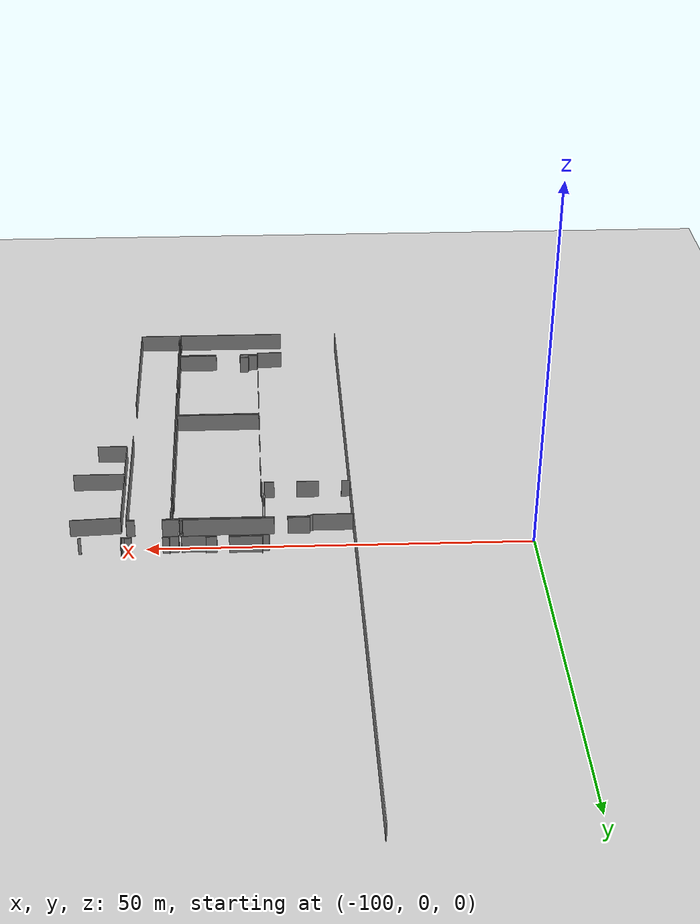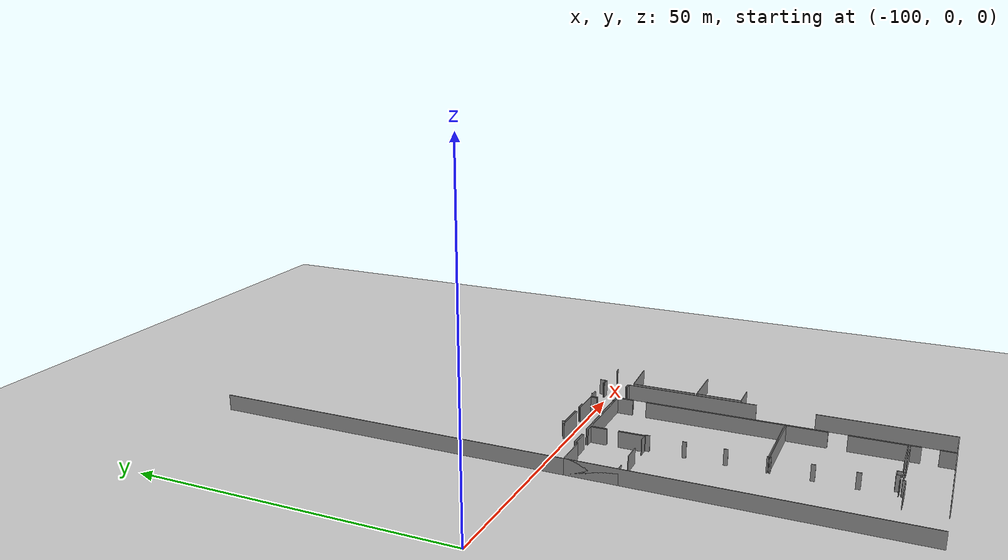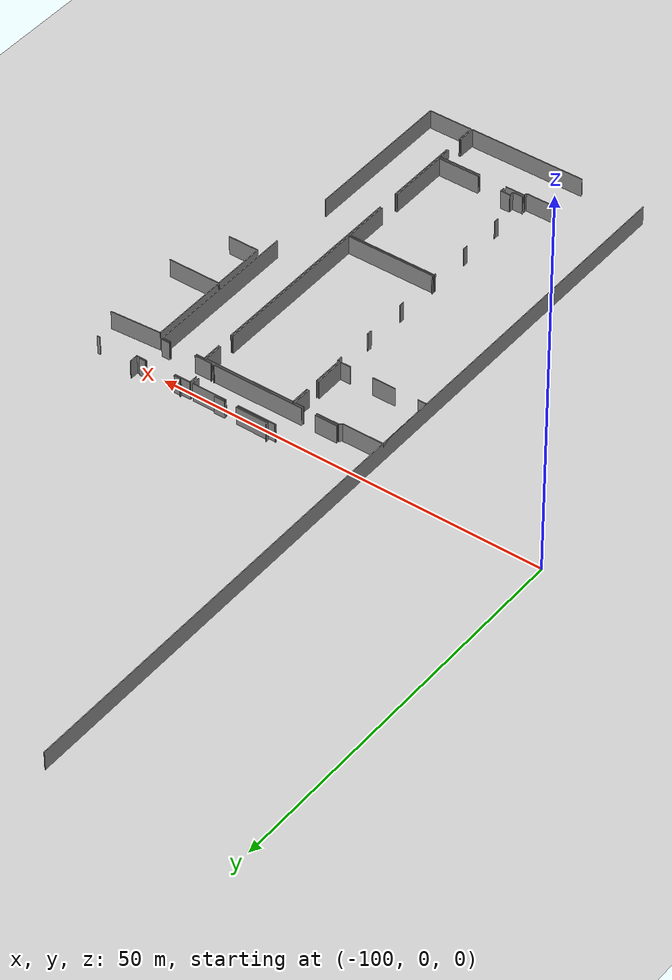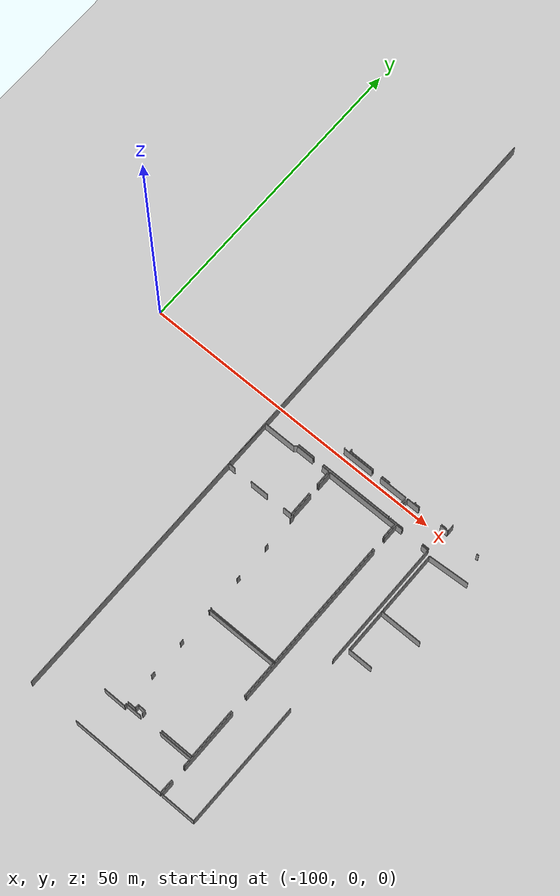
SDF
<sdf version="1.6">
 <world name="default">
  <model name="ground_plane">
   <static>1</static>
   <link name="link">
    <collision name="collision">
     <geometry><plane><normal>0 0 1</normal><size>100 100</size></plane></geometry>
     <surface><friction><ode><mu>100</mu><mu2>50</mu2></ode></friction></surface>
    </collision>
    <visual name="visual">
     <cast_shadows>0</cast_shadows>
     <geometry><plane><normal>0 0 1</normal><size>100 100</size></plane></geometry>
     <material>
      <script><uri>file://media/materials/scripts/gazebo.material</uri><name>Gazebo/Grey</name></script>
     </material>
    </visual>
   </link>
  </model>
  <model name="0510032217_A-40">
   <static>1</static>
   <link name="Wall_377">
    <collision name="Wall_377_Collision">
     <geometry><box><size>0.899654857375 0.1 2.5</size></box></geometry>
     <pose>0.449827428687 0 1.25 0 0 0</pose>
    </collision>
    <visual name="Wall_377_Visual">
     <pose>0.449827428687 0 1.25 0 0 0</pose>
     <geometry><box><size>0.899654857375 0.1 2.5</size></box></geometry>
     <material>
      <script><uri>file://media/materials/scripts/gazebo.material</uri><name>Gazebo/Grey</name></script>
      <ambient>1 1 1 1</ambient>
     </material>
    </visual>
    <pose>29.5248578824 -52.2868490509 0 0 0 3.14159265359</pose>
   </link>
   <link name="Wall_378">
    <collision name="Wall_378_Collision">
     <geometry><box><size>0.909425439042 0.1 2.5</size></box></geometry>
     <pose>0.454712719521 0 1.25 0 0 0</pose>
    </collision>
    <visual name="Wall_378_Visual">
     <pose>0.454712719521 0 1.25 0 0 0</pose>
     <geometry><box><size>0.909425439042 0.1 2.5</size></box></geometry>
     <material>
      <script><uri>file://media/materials/scripts/gazebo.material</uri><name>Gazebo/Grey</name></script>
      <ambient>1 1 1 1</ambient>
     </material>
    </visual>
    <pose>24.6799182824 -52.2868490509 0 0 0 3.14159265359</pose>
   </link>
   <link name="Wall_379">
    <collision name="Wall_379_Collision">
     <geometry><box><size>0.191478022536 0.1 2.5</size></box></geometry>
     <pose>0.0957390112679 0 1.25 0 0 0</pose>
    </collision>
    <visual name="Wall_379_Visual">
     <pose>0.0957390112679 0 1.25 0 0 0</pose>
     <geometry><box><size>0.191478022536 0.1 2.5</size></box></geometry>
     <material>
      <script><uri>file://media/materials/scripts/gazebo.material</uri><name>Gazebo/Grey</name></script>
      <ambient>1 1 1 1</ambient>
     </material>
    </visual>
    <pose>23.7704928434 -52.2868490509 0 0 0 1.57079632679</pose>
   </link>
   <link name="Wall_401">
    <collision name="Wall_401_Collision">
     <geometry><box><size>1.40341082124 0.1 2.5</size></box></geometry>
     <pose>0.701705410618 0 1.25 0 0 0</pose>
    </collision>
    <visual name="Wall_401_Visual">
     <pose>0.701705410618 0 1.25 0 0 0</pose>
     <geometry><box><size>1.40341082124 0.1 2.5</size></box></geometry>
     <material>
      <script><uri>file://media/materials/scripts/gazebo.material</uri><name>Gazebo/Grey</name></script>
      <ambient>1 1 1 1</ambient>
     </material>
    </visual>
    <pose>19.1314968024 -52.1995482692 0 0 0 3.14159265359</pose>
   </link>
   <link name="Wall_402">
    <collision name="Wall_402_Collision">
     <geometry><box><size>4.2645416709 0.1 2.5</size></box></geometry>
     <pose>2.13227083545 0 1.25 0 0 0</pose>
    </collision>
    <visual name="Wall_402_Visual">
     <pose>2.13227083545 0 1.25 0 0 0</pose>
     <geometry><box><size>4.2645416709 0.1 2.5</size></box></geometry>
     <material>
      <script><uri>file://media/materials/scripts/gazebo.material</uri><name>Gazebo/Grey</name></script>
      <ambient>1 1 1 1</ambient>
     </material>
    </visual>
    <pose>16.1632702264 -52.1995482692 0 0 0 3.14159265359</pose>
   </link>
   <link name="Wall_403">
    <collision name="Wall_403_Collision">
     <geometry><box><size>0.368617399249 0.1 2.5</size></box></geometry>
     <pose>0.184308699624 0 1.25 0 0 0</pose>
    </collision>
    <visual name="Wall_403_Visual">
     <pose>0.184308699624 0 1.25 0 0 0</pose>
     <geometry><box><size>0.368617399249 0.1 2.5</size></box></geometry>
     <material>
      <script><uri>file://media/materials/scripts/gazebo.material</uri><name>Gazebo/Grey</name></script>
      <ambient>1 1 1 1</ambient>
     </material>
    </visual>
    <pose>11.8987285555 -52.1995482692 0 0 0 1.57079632679</pose>
   </link>
   <link name="Wall_409">
    <collision name="Wall_409_Collision">
     <geometry><box><size>1.05725307075 0.1 2.5</size></box></geometry>
     <pose>0.528626535377 0 1.25 0 0 0</pose>
    </collision>
    <visual name="Wall_409_Visual">
     <pose>0.528626535377 0 1.25 0 0 0</pose>
     <geometry><box><size>1.05725307075 0.1 2.5</size></box></geometry>
     <material>
      <script><uri>file://media/materials/scripts/gazebo.material</uri><name>Gazebo/Grey</name></script>
      <ambient>1 1 1 1</ambient>
     </material>
    </visual>
    <pose>22.2446325246 -52.4493960004 0 0 0 -1.57079632679</pose>
   </link>
   <link name="Wall_410">
    <collision name="Wall_410_Collision">
     <geometry><box><size>0.143386458228 0.1 2.5</size></box></geometry>
     <pose>0.0716932291138 0 1.25 0 0 0</pose>
    </collision>
    <visual name="Wall_410_Visual">
     <pose>0.0716932291138 0 1.25 0 0 0</pose>
     <geometry><box><size>0.143386458228 0.1 2.5</size></box></geometry>
     <material>
      <script><uri>file://media/materials/scripts/gazebo.material</uri><name>Gazebo/Grey</name></script>
      <ambient>1 1 1 1</ambient>
     </material>
    </visual>
    <pose>22.2446325246 -56.0504263527 0 0 0 -1.57079632679</pose>
   </link>
   <link name="Wall_411">
    <collision name="Wall_411_Collision">
     <geometry><box><size>11.9005684702 0.1 2.5</size></box></geometry>
     <pose>5.9502842351 0 1.25 0 0 0</pose>
    </collision>
    <visual name="Wall_411_Visual">
     <pose>5.9502842351 0 1.25 0 0 0</pose>
     <geometry><box><size>11.9005684702 0.1 2.5</size></box></geometry>
     <material>
      <script><uri>file://media/materials/scripts/gazebo.material</uri><name>Gazebo/Grey</name></script>
      <ambient>1 1 1 1</ambient>
     </material>
    </visual>
    <pose>22.2446325246 -56.1938128109 0 0 0 3.14159265359</pose>
   </link>
   <link name="Wall_412">
    <collision name="Wall_412_Collision">
     <geometry><box><size>2.92635265455 0.1 2.5</size></box></geometry>
     <pose>1.46317632728 0 1.25 0 0 0</pose>
    </collision>
    <visual name="Wall_412_Visual">
     <pose>1.46317632728 0 1.25 0 0 0</pose>
     <geometry><box><size>2.92635265455 0.1 2.5</size></box></geometry>
     <material>
      <script><uri>file://media/materials/scripts/gazebo.material</uri><name>Gazebo/Grey</name></script>
      <ambient>1 1 1 1</ambient>
     </material>
    </visual>
    <pose>8.59779464014 -56.1938128109 0 0 0 3.14159265359</pose>
   </link>
   <link name="Wall_413">
    <collision name="Wall_413_Collision">
     <geometry><box><size>0.159120901431 0.1 2.5</size></box></geometry>
     <pose>0.0795604507157 0 1.25 0 0 0</pose>
    </collision>
    <visual name="Wall_413_Visual">
     <pose>0.0795604507157 0 1.25 0 0 0</pose>
     <geometry><box><size>0.159120901431 0.1 2.5</size></box></geometry>
     <material>
      <script><uri>file://media/materials/scripts/gazebo.material</uri><name>Gazebo/Grey</name></script>
      <ambient>1 1 1 1</ambient>
     </material>
    </visual>
    <pose>11.0155694853 -52.2972540859 0 0 0 -1.57079632679</pose>
   </link>
   <link name="Wall_414">
    <collision name="Wall_414_Collision">
     <geometry><box><size>5.12917470308 0.1 2.5</size></box></geometry>
     <pose>2.56458735154 0 1.25 0 0 0</pose>
    </collision>
    <visual name="Wall_414_Visual">
     <pose>2.56458735154 0 1.25 0 0 0</pose>
     <geometry><box><size>5.12917470308 0.1 2.5</size></box></geometry>
     <material>
      <script><uri>file://media/materials/scripts/gazebo.material</uri><name>Gazebo/Grey</name></script>
      <ambient>1 1 1 1</ambient>
     </material>
    </visual>
    <pose>11.0155694853 -52.4563749873 0 0 0 0.0</pose>
   </link>
   <link name="Wall_415">
    <collision name="Wall_415_Collision">
     <geometry><box><size>4.54142247746 0.1 2.5</size></box></geometry>
     <pose>2.27071123873 0 1.25 0 0 0</pose>
    </collision>
    <visual name="Wall_415_Visual">
     <pose>2.27071123873 0 1.25 0 0 0</pose>
     <geometry><box><size>4.54142247746 0.1 2.5</size></box></geometry>
     <material>
      <script><uri>file://media/materials/scripts/gazebo.material</uri><name>Gazebo/Grey</name></script>
      <ambient>1 1 1 1</ambient>
     </material>
    </visual>
    <pose>17.7032154096 -52.4563749873 0 0 0 0.00153674089702</pose>
   </link>
   <link name="Wall_416">
    <collision name="Wall_416_Collision">
     <geometry><box><size>1.36255202518 0.1 2.5</size></box></geometry>
     <pose>0.681276012588 0 1.25 0 0 0</pose>
    </collision>
    <visual name="Wall_416_Visual">
     <pose>0.681276012588 0 1.25 0 0 0</pose>
     <geometry><box><size>1.36255202518 0.1 2.5</size></box></geometry>
     <material>
      <script><uri>file://media/materials/scripts/gazebo.material</uri><name>Gazebo/Grey</name></script>
      <ambient>1 1 1 1</ambient>
     </material>
    </visual>
    <pose>11.5242741854 -64.7150289311 0 0 0 3.14159265359</pose>
   </link>
   <link name="Wall_417">
    <collision name="Wall_417_Collision">
     <geometry><box><size>3.01035427875 0.1 2.5</size></box></geometry>
     <pose>1.50517713938 0 1.25 0 0 0</pose>
    </collision>
    <visual name="Wall_417_Visual">
     <pose>1.50517713938 0 1.25 0 0 0</pose>
     <geometry><box><size>3.01035427875 0.1 2.5</size></box></geometry>
     <material>
      <script><uri>file://media/materials/scripts/gazebo.material</uri><name>Gazebo/Grey</name></script>
      <ambient>1 1 1 1</ambient>
     </material>
    </visual>
    <pose>7.15758552431 -64.7150289311 0 0 0 3.14159265359</pose>
   </link>
   <link name="Wall_418">
    <collision name="Wall_418_Collision">
     <geometry><box><size>1.1629910669 0.1 2.5</size></box></geometry>
     <pose>0.581495533448 0 1.25 0 0 0</pose>
    </collision>
    <visual name="Wall_418_Visual">
     <pose>0.581495533448 0 1.25 0 0 0</pose>
     <geometry><box><size>1.1629910669 0.1 2.5</size></box></geometry>
     <material>
      <script><uri>file://media/materials/scripts/gazebo.material</uri><name>Gazebo/Grey</name></script>
      <ambient>1 1 1 1</ambient>
     </material>
    </visual>
    <pose>1.1629910669 -64.7150289311 0 0 0 3.14159265359</pose>
   </link>
   <link name="Wall_419">
    <collision name="Wall_419_Collision">
     <geometry><box><size>7.90566947518 0.1 2.5</size></box></geometry>
     <pose>3.95283473759 0 1.25 0 0 0</pose>
    </collision>
    <visual name="Wall_419_Visual">
     <pose>3.95283473759 0 1.25 0 0 0</pose>
     <geometry><box><size>7.90566947518 0.1 2.5</size></box></geometry>
     <material>
      <script><uri>file://media/materials/scripts/gazebo.material</uri><name>Gazebo/Grey</name></script>
      <ambient>1 1 1 1</ambient>
     </material>
    </visual>
    <pose>0.0 -64.7150289311 0 0 0 1.57079632679</pose>
   </link>
   <link name="Wall_420">
    <collision name="Wall_420_Collision">
     <geometry><box><size>5.35421530809 0.1 2.5</size></box></geometry>
     <pose>2.67710765405 0 1.25 0 0 0</pose>
    </collision>
    <visual name="Wall_420_Visual">
     <pose>2.67710765405 0 1.25 0 0 0</pose>
     <geometry><box><size>5.35421530809 0.1 2.5</size></box></geometry>
     <material>
      <script><uri>file://media/materials/scripts/gazebo.material</uri><name>Gazebo/Grey</name></script>
      <ambient>1 1 1 1</ambient>
     </material>
    </visual>
    <pose>0.0 -56.8093594559 0 0 0 0.0</pose>
   </link>
   <link name="Wall_421">
    <collision name="Wall_421_Collision">
     <geometry><box><size>0.463621943368 0.1 2.5</size></box></geometry>
     <pose>0.231810971684 0 1.25 0 0 0</pose>
    </collision>
    <visual name="Wall_421_Visual">
     <pose>0.231810971684 0 1.25 0 0 0</pose>
     <geometry><box><size>0.463621943368 0.1 2.5</size></box></geometry>
     <material>
      <script><uri>file://media/materials/scripts/gazebo.material</uri><name>Gazebo/Grey</name></script>
      <ambient>1 1 1 1</ambient>
     </material>
    </visual>
    <pose>5.35421530809 -56.8093594559 0 0 0 0.764495284952</pose>
   </link>
   <link name="Wall_422">
    <collision name="Wall_422_Collision">
     <geometry><box><size>2.90249720841 0.1 2.5</size></box></geometry>
     <pose>1.4512486042 0 1.25 0 0 0</pose>
    </collision>
    <visual name="Wall_422_Visual">
     <pose>1.4512486042 0 1.25 0 0 0</pose>
     <geometry><box><size>2.90249720841 0.1 2.5</size></box></geometry>
     <material>
      <script><uri>file://media/materials/scripts/gazebo.material</uri><name>Gazebo/Grey</name></script>
      <ambient>1 1 1 1</ambient>
     </material>
    </visual>
    <pose>5.68882600751 -56.4884529489 0 0 0 0.0</pose>
   </link>
   <link name="Wall_423">
    <collision name="Wall_423_Collision">
     <geometry><box><size>1.18477819511 0.1 2.5</size></box></geometry>
     <pose>0.592389097554 0 1.25 0 0 0</pose>
    </collision>
    <visual name="Wall_423_Visual">
     <pose>0.592389097554 0 1.25 0 0 0</pose>
     <geometry><box><size>1.18477819511 0.1 2.5</size></box></geometry>
     <material>
      <script><uri>file://media/materials/scripts/gazebo.material</uri><name>Gazebo/Grey</name></script>
      <ambient>1 1 1 1</ambient>
     </material>
    </visual>
    <pose>10.321096843 -56.4884529489 0 0 0 0.0</pose>
   </link>
   <link name="Wall_424">
    <collision name="Wall_424_Collision">
     <geometry><box><size>2.50685209623 0.1 2.5</size></box></geometry>
     <pose>1.25342604812 0 1.25 0 0 0</pose>
    </collision>
    <visual name="Wall_424_Visual">
     <pose>1.25342604812 0 1.25 0 0 0</pose>
     <geometry><box><size>2.50685209623 0.1 2.5</size></box></geometry>
     <material>
      <script><uri>file://media/materials/scripts/gazebo.material</uri><name>Gazebo/Grey</name></script>
      <ambient>1 1 1 1</ambient>
     </material>
    </visual>
    <pose>11.5058750381 -56.4884529489 0 0 0 -1.57079632679</pose>
   </link>
   <link name="Wall_425">
    <collision name="Wall_425_Collision">
     <geometry><box><size>3.96271147909 0.1 2.5</size></box></geometry>
     <pose>1.98135573954 0 1.25 0 0 0</pose>
    </collision>
    <visual name="Wall_425_Visual">
     <pose>1.98135573954 0 1.25 0 0 0</pose>
     <geometry><box><size>3.96271147909 0.1 2.5</size></box></geometry>
     <material>
      <script><uri>file://media/materials/scripts/gazebo.material</uri><name>Gazebo/Grey</name></script>
      <ambient>1 1 1 1</ambient>
     </material>
    </visual>
    <pose>11.5058750381 -60.7523601665 0 0 0 -1.56615323998</pose>
   </link>
   <link name="Wall_426">
    <collision name="Wall_426_Collision">
     <geometry><box><size>11.6184905086 0.1 2.5</size></box></geometry>
     <pose>5.80924525429 0 1.25 0 0 0</pose>
    </collision>
    <visual name="Wall_426_Visual">
     <pose>5.80924525429 0 1.25 0 0 0</pose>
     <geometry><box><size>11.6184905086 0.1 2.5</size></box></geometry>
     <material>
      <script><uri>file://media/materials/scripts/gazebo.material</uri><name>Gazebo/Grey</name></script>
      <ambient>1 1 1 1</ambient>
     </material>
    </visual>
    <pose>23.5425971983 -82.4134859405 0 0 0 3.14159265359</pose>
   </link>
   <link name="Wall_427">
    <collision name="Wall_427_Collision">
     <geometry><box><size>0.214191452644 0.1 2.5</size></box></geometry>
     <pose>0.107095726322 0 1.25 0 0 0</pose>
    </collision>
    <visual name="Wall_427_Visual">
     <pose>0.107095726322 0 1.25 0 0 0</pose>
     <geometry><box><size>0.214191452644 0.1 2.5</size></box></geometry>
     <material>
      <script><uri>file://media/materials/scripts/gazebo.material</uri><name>Gazebo/Grey</name></script>
      <ambient>1 1 1 1</ambient>
     </material>
    </visual>
    <pose>11.9241066897 -82.4134859405 0 0 0 1.57079632679</pose>
   </link>
   <link name="Wall_428">
    <collision name="Wall_428_Collision">
     <geometry><box><size>0.637244949751 0.1 2.5</size></box></geometry>
     <pose>0.318622474876 0 1.25 0 0 0</pose>
    </collision>
    <visual name="Wall_428_Visual">
     <pose>0.318622474876 0 1.25 0 0 0</pose>
     <geometry><box><size>0.637244949751 0.1 2.5</size></box></geometry>
     <material>
      <script><uri>file://media/materials/scripts/gazebo.material</uri><name>Gazebo/Grey</name></script>
      <ambient>1 1 1 1</ambient>
     </material>
    </visual>
    <pose>11.9241066897 -76.8294081819 0 0 0 1.57079632679</pose>
   </link>
   <link name="Wall_429">
    <collision name="Wall_429_Collision">
     <geometry><box><size>0.623667647955 0.1 2.5</size></box></geometry>
     <pose>0.311833823977 0 1.25 0 0 0</pose>
    </collision>
    <visual name="Wall_429_Visual">
     <pose>0.311833823977 0 1.25 0 0 0</pose>
     <geometry><box><size>0.623667647955 0.1 2.5</size></box></geometry>
     <material>
      <script><uri>file://media/materials/scripts/gazebo.material</uri><name>Gazebo/Grey</name></script>
      <ambient>1 1 1 1</ambient>
     </material>
    </visual>
    <pose>11.9241066897 -70.8364886814 0 0 0 1.57079632679</pose>
   </link>
   <link name="Wall_430">
    <collision name="Wall_430_Collision">
     <geometry><box><size>0.719596995229 0.1 2.5</size></box></geometry>
     <pose>0.359798497614 0 1.25 0 0 0</pose>
    </collision>
    <visual name="Wall_430_Visual">
     <pose>0.359798497614 0 1.25 0 0 0</pose>
     <geometry><box><size>0.719596995229 0.1 2.5</size></box></geometry>
     <material>
      <script><uri>file://media/materials/scripts/gazebo.material</uri><name>Gazebo/Grey</name></script>
      <ambient>1 1 1 1</ambient>
     </material>
    </visual>
    <pose>11.9241066897 -65.4249822353 0 0 0 1.57079632679</pose>
   </link>
   <link name="Wall_431">
    <collision name="Wall_431_Collision">
     <geometry><box><size>0.159628464115 0.1 2.5</size></box></geometry>
     <pose>0.0798142320577 0 1.25 0 0 0</pose>
    </collision>
    <visual name="Wall_431_Visual">
     <pose>0.0798142320577 0 1.25 0 0 0</pose>
     <geometry><box><size>0.159628464115 0.1 2.5</size></box></geometry>
     <material>
      <script><uri>file://media/materials/scripts/gazebo.material</uri><name>Gazebo/Grey</name></script>
      <ambient>1 1 1 1</ambient>
     </material>
    </visual>
    <pose>11.9241066897 -64.7053852401 0 0 0 3.14159265359</pose>
   </link>
   <link name="Wall_432">
    <collision name="Wall_432_Collision">
     <geometry><box><size>3.96634859405 0.1 2.5</size></box></geometry>
     <pose>1.98317429703 0 1.25 0 0 0</pose>
    </collision>
    <visual name="Wall_432_Visual">
     <pose>1.98317429703 0 1.25 0 0 0</pose>
     <geometry><box><size>3.96634859405 0.1 2.5</size></box></geometry>
     <material>
      <script><uri>file://media/materials/scripts/gazebo.material</uri><name>Gazebo/Grey</name></script>
      <ambient>1 1 1 1</ambient>
     </material>
    </visual>
    <pose>11.7644782256 -64.7053852401 0 0 0 1.57079632679</pose>
   </link>
   <link name="Wall_433">
    <collision name="Wall_433_Collision">
     <geometry><box><size>2.47931682063 0.1 2.5</size></box></geometry>
     <pose>1.23965841031 0 1.25 0 0 0</pose>
    </collision>
    <visual name="Wall_433_Visual">
     <pose>1.23965841031 0 1.25 0 0 0</pose>
     <geometry><box><size>2.47931682063 0.1 2.5</size></box></geometry>
     <material>
      <script><uri>file://media/materials/scripts/gazebo.material</uri><name>Gazebo/Grey</name></script>
      <ambient>1 1 1 1</ambient>
     </material>
    </visual>
    <pose>11.7644782256 -58.979951274 0 0 0 1.57079632679</pose>
   </link>
   <link name="Wall_434">
    <collision name="Wall_434_Collision">
     <geometry><box><size>11.7807836768 0.1 2.5</size></box></geometry>
     <pose>5.89039183839 0 1.25 0 0 0</pose>
    </collision>
    <visual name="Wall_434_Visual">
     <pose>5.89039183839 0 1.25 0 0 0</pose>
     <geometry><box><size>11.7807836768 0.1 2.5</size></box></geometry>
     <material>
      <script><uri>file://media/materials/scripts/gazebo.material</uri><name>Gazebo/Grey</name></script>
      <ambient>1 1 1 1</ambient>
     </material>
    </visual>
    <pose>11.7644782256 -56.5006344534 0 0 0 0.0</pose>
   </link>
   <link name="Wall_435">
    <collision name="Wall_435_Collision">
     <geometry><box><size>2.48388488478 0.1 2.5</size></box></geometry>
     <pose>1.24194244239 0 1.25 0 0 0</pose>
    </collision>
    <visual name="Wall_435_Visual">
     <pose>1.24194244239 0 1.25 0 0 0</pose>
     <geometry><box><size>2.48388488478 0.1 2.5</size></box></geometry>
     <material>
      <script><uri>file://media/materials/scripts/gazebo.material</uri><name>Gazebo/Grey</name></script>
      <ambient>1 1 1 1</ambient>
     </material>
    </visual>
    <pose>23.5452619023 -56.5006344534 0 0 0 -1.57079632679</pose>
   </link>
   <link name="Wall_436">
    <collision name="Wall_436_Collision">
     <geometry><box><size>21.2653539381 0.1 2.5</size></box></geometry>
     <pose>10.6326769691 0 1.25 0 0 0</pose>
    </collision>
    <visual name="Wall_436_Visual">
     <pose>10.6326769691 0 1.25 0 0 0</pose>
     <geometry><box><size>21.2653539381 0.1 2.5</size></box></geometry>
     <material>
      <script><uri>file://media/materials/scripts/gazebo.material</uri><name>Gazebo/Grey</name></script>
      <ambient>1 1 1 1</ambient>
     </material>
    </visual>
    <pose>23.5452619023 -61.1481321693 0 0 0 -1.5709216341</pose>
   </link>
   <link name="Wall_437">
    <collision name="Wall_437_Collision">
     <geometry><box><size>5.71959699523 0.1 2.5</size></box></geometry>
     <pose>2.85979849761 0 1.25 0 0 0</pose>
    </collision>
    <visual name="Wall_437_Visual">
     <pose>2.85979849761 0 1.25 0 0 0</pose>
     <geometry><box><size>5.71959699523 0.1 2.5</size></box></geometry>
     <material>
      <script><uri>file://media/materials/scripts/gazebo.material</uri><name>Gazebo/Grey</name></script>
      <ambient>1 1 1 1</ambient>
     </material>
    </visual>
    <pose>29.4963074815 -106.199142219 0 0 0 3.14159265359</pose>
   </link>
   <link name="Wall_438">
    <collision name="Wall_438_Collision">
     <geometry><box><size>2.27235813623 0.1 2.5</size></box></geometry>
     <pose>1.13617906811 0 1.25 0 0 0</pose>
    </collision>
    <visual name="Wall_438_Visual">
     <pose>1.13617906811 0 1.25 0 0 0</pose>
     <geometry><box><size>2.27235813623 0.1 2.5</size></box></geometry>
     <material>
      <script><uri>file://media/materials/scripts/gazebo.material</uri><name>Gazebo/Grey</name></script>
      <ambient>1 1 1 1</ambient>
     </material>
    </visual>
    <pose>23.7767104862 -106.199142219 0 0 0 1.57079632679</pose>
   </link>
   <link name="Wall_439">
    <collision name="Wall_439_Collision">
     <geometry><box><size>10.0210638514 0.1 2.5</size></box></geometry>
     <pose>5.01053192569 0 1.25 0 0 0</pose>
    </collision>
    <visual name="Wall_439_Visual">
     <pose>5.01053192569 0 1.25 0 0 0</pose>
     <geometry><box><size>10.0210638514 0.1 2.5</size></box></geometry>
     <material>
      <script><uri>file://media/materials/scripts/gazebo.material</uri><name>Gazebo/Grey</name></script>
      <ambient>1 1 1 1</ambient>
     </material>
    </visual>
    <pose>23.7767104862 -101.514973099 0 0 0 1.57079632679</pose>
   </link>
   <link name="Wall_440">
    <collision name="Wall_440_Collision">
     <geometry><box><size>27.5290579637 0.1 2.5</size></box></geometry>
     <pose>13.7645289818 0 1.25 0 0 0</pose>
    </collision>
    <visual name="Wall_440_Visual">
     <pose>13.7645289818 0 1.25 0 0 0</pose>
     <geometry><box><size>27.5290579637 0.1 2.5</size></box></geometry>
     <material>
      <script><uri>file://media/materials/scripts/gazebo.material</uri><name>Gazebo/Grey</name></script>
      <ambient>1 1 1 1</ambient>
     </material>
    </visual>
    <pose>23.7767104862 -88.6888640747 0 0 0 1.57079632679</pose>
   </link>
   <link name="Wall_441">
    <collision name="Wall_441_Collision">
     <geometry><box><size>2.59948228606 0.1 2.5</size></box></geometry>
     <pose>1.29974114303 0 1.25 0 0 0</pose>
    </collision>
    <visual name="Wall_441_Visual">
     <pose>1.29974114303 0 1.25 0 0 0</pose>
     <geometry><box><size>2.59948228606 0.1 2.5</size></box></geometry>
     <material>
      <script><uri>file://media/materials/scripts/gazebo.material</uri><name>Gazebo/Grey</name></script>
      <ambient>1 1 1 1</ambient>
     </material>
    </visual>
    <pose>23.7767104862 -59.0074865496 0 0 0 1.57079632679</pose>
   </link>
   <link name="Wall_442">
    <collision name="Wall_442_Collision">
     <geometry><box><size>1.06676987108 0.1 2.5</size></box></geometry>
     <pose>0.53338493554 0 1.25 0 0 0</pose>
    </collision>
    <visual name="Wall_442_Visual">
     <pose>0.53338493554 0 1.25 0 0 0</pose>
     <geometry><box><size>1.06676987108 0.1 2.5</size></box></geometry>
     <material>
      <script><uri>file://media/materials/scripts/gazebo.material</uri><name>Gazebo/Grey</name></script>
      <ambient>1 1 1 1</ambient>
     </material>
    </visual>
    <pose>23.7767104862 -56.4080042635 0 0 0 0.0</pose>
   </link>
   <link name="Wall_443">
    <collision name="Wall_443_Collision">
     <geometry><box><size>1.09240178662 0.1 2.5</size></box></geometry>
     <pose>0.54620089331 0 1.25 0 0 0</pose>
    </collision>
    <visual name="Wall_443_Visual">
     <pose>0.54620089331 0 1.25 0 0 0</pose>
     <geometry><box><size>1.09240178662 0.1 2.5</size></box></geometry>
     <material>
      <script><uri>file://media/materials/scripts/gazebo.material</uri><name>Gazebo/Grey</name></script>
      <ambient>1 1 1 1</ambient>
     </material>
    </visual>
    <pose>28.3999720841 -56.4080042635 0 0 0 0.0</pose>
   </link>
   <link name="Wall_444">
    <collision name="Wall_444_Collision">
     <geometry><box><size>20.6179575678 0.1 2.5</size></box></geometry>
     <pose>10.3089787839 0 1.25 0 0 0</pose>
    </collision>
    <visual name="Wall_444_Visual">
     <pose>10.3089787839 0 1.25 0 0 0</pose>
     <geometry><box><size>20.6179575678 0.1 2.5</size></box></geometry>
     <material>
      <script><uri>file://media/materials/scripts/gazebo.material</uri><name>Gazebo/Grey</name></script>
      <ambient>1 1 1 1</ambient>
     </material>
    </visual>
    <pose>29.4923738707 -56.4080042635 0 0 0 -1.57079632679</pose>
   </link>
   <link name="Wall_445">
    <collision name="Wall_445_Collision">
     <geometry><box><size>20.1966809231 0.1 2.5</size></box></geometry>
     <pose>10.0983404616 0 1.25 0 0 0</pose>
    </collision>
    <visual name="Wall_445_Visual">
     <pose>10.0983404616 0 1.25 0 0 0</pose>
     <geometry><box><size>20.1966809231 0.1 2.5</size></box></geometry>
     <material>
      <script><uri>file://media/materials/scripts/gazebo.material</uri><name>Gazebo/Grey</name></script>
      <ambient>1 1 1 1</ambient>
     </material>
    </visual>
    <pose>29.4923738707 -86.002461679 0 0 0 -1.57060156158</pose>
   </link>
   <link name="Wall_446">
    <collision name="Wall_446_Collision">
     <geometry><box><size>5.43967617501 0.1 2.5</size></box></geometry>
     <pose>2.7198380875 0 1.25 0 0 0</pose>
    </collision>
    <visual name="Wall_446_Visual">
     <pose>2.7198380875 0 1.25 0 0 0</pose>
     <geometry><box><size>5.43967617501 0.1 2.5</size></box></geometry>
     <material>
      <script><uri>file://media/materials/scripts/gazebo.material</uri><name>Gazebo/Grey</name></script>
      <ambient>1 1 1 1</ambient>
     </material>
    </visual>
    <pose>23.5339686326 -99.6897776875 0 0 0 3.14159265359</pose>
   </link>
   <link name="Wall_447">
    <collision name="Wall_447_Collision">
     <geometry><box><size>0.625571008019 0.1 2.5</size></box></geometry>
     <pose>0.31278550401 0 1.25 0 0 0</pose>
    </collision>
    <visual name="Wall_447_Visual">
     <pose>0.31278550401 0 1.25 0 0 0</pose>
     <geometry><box><size>0.625571008019 0.1 2.5</size></box></geometry>
     <material>
      <script><uri>file://media/materials/scripts/gazebo.material</uri><name>Gazebo/Grey</name></script>
      <ambient>1 1 1 1</ambient>
     </material>
    </visual>
    <pose>14.5177520049 -99.6897776875 0 0 0 1.57079632679</pose>
   </link>
   <link name="Wall_448">
    <collision name="Wall_448_Collision">
     <geometry><box><size>1.22804791392 0.1 2.5</size></box></geometry>
     <pose>0.614023956959 0 1.25 0 0 0</pose>
    </collision>
    <visual name="Wall_448_Visual">
     <pose>0.614023956959 0 1.25 0 0 0</pose>
     <geometry><box><size>1.22804791392 0.1 2.5</size></box></geometry>
     <material>
      <script><uri>file://media/materials/scripts/gazebo.material</uri><name>Gazebo/Grey</name></script>
      <ambient>1 1 1 1</ambient>
     </material>
    </visual>
    <pose>14.5177520049 -99.0642066795 0 0 0 3.14159265359</pose>
   </link>
   <link name="Wall_449">
    <collision name="Wall_449_Collision">
     <geometry><box><size>0.614023956959 0.1 2.5</size></box></geometry>
     <pose>0.307011978479 0 1.25 0 0 0</pose>
    </collision>
    <visual name="Wall_449_Visual">
     <pose>0.307011978479 0 1.25 0 0 0</pose>
     <geometry><box><size>0.614023956959 0.1 2.5</size></box></geometry>
     <material>
      <script><uri>file://media/materials/scripts/gazebo.material</uri><name>Gazebo/Grey</name></script>
      <ambient>1 1 1 1</ambient>
     </material>
    </visual>
    <pose>13.289704091 -99.0642066795 0 0 0 -1.57079632679</pose>
   </link>
   <link name="Wall_450">
    <collision name="Wall_450_Collision">
     <geometry><box><size>1.36255202518 0.1 2.5</size></box></geometry>
     <pose>0.681276012588 0 1.25 0 0 0</pose>
    </collision>
    <visual name="Wall_450_Visual">
     <pose>0.681276012588 0 1.25 0 0 0</pose>
     <geometry><box><size>1.36255202518 0.1 2.5</size></box></geometry>
     <material>
      <script><uri>file://media/materials/scripts/gazebo.material</uri><name>Gazebo/Grey</name></script>
      <ambient>1 1 1 1</ambient>
     </material>
    </visual>
    <pose>13.289704091 -99.6782306365 0 0 0 3.14159265359</pose>
   </link>
   <link name="Wall_451">
    <collision name="Wall_451_Collision">
     <geometry><box><size>0.0767688559537 0.1 2.5</size></box></geometry>
     <pose>0.0383844279769 0 1.25 0 0 0</pose>
    </collision>
    <visual name="Wall_451_Visual">
     <pose>0.0383844279769 0 1.25 0 0 0</pose>
     <geometry><box><size>0.0767688559537 0.1 2.5</size></box></geometry>
     <material>
      <script><uri>file://media/materials/scripts/gazebo.material</uri><name>Gazebo/Grey</name></script>
      <ambient>1 1 1 1</ambient>
     </material>
    </visual>
    <pose>11.9271520658 -99.6782306365 0 0 0 1.57079632679</pose>
   </link>
   <link name="Wall_452">
    <collision name="Wall_452_Collision">
     <geometry><box><size>0.685844076743 0.1 2.5</size></box></geometry>
     <pose>0.342922038372 0 1.25 0 0 0</pose>
    </collision>
    <visual name="Wall_452_Visual">
     <pose>0.342922038372 0 1.25 0 0 0</pose>
     <geometry><box><size>0.685844076743 0.1 2.5</size></box></geometry>
     <material>
      <script><uri>file://media/materials/scripts/gazebo.material</uri><name>Gazebo/Grey</name></script>
      <ambient>1 1 1 1</ambient>
     </material>
    </visual>
    <pose>11.9271520658 -94.8509288397 0 0 0 1.57079632679</pose>
   </link>
   <link name="Wall_453">
    <collision name="Wall_453_Collision">
     <geometry><box><size>0.639275200487 0.1 2.5</size></box></geometry>
     <pose>0.319637600244 0 1.25 0 0 0</pose>
    </collision>
    <visual name="Wall_453_Visual">
     <pose>0.319637600244 0 1.25 0 0 0</pose>
     <geometry><box><size>0.639275200487 0.1 2.5</size></box></geometry>
     <material>
      <script><uri>file://media/materials/scripts/gazebo.material</uri><name>Gazebo/Grey</name></script>
      <ambient>1 1 1 1</ambient>
     </material>
    </visual>
    <pose>11.9271520658 -88.8396101919 0 0 0 1.57079632679</pose>
   </link>
   <link name="Wall_454">
    <collision name="Wall_454_Collision">
     <geometry><box><size>0.197568774744 0.1 2.5</size></box></geometry>
     <pose>0.0987843873718 0 1.25 0 0 0</pose>
    </collision>
    <visual name="Wall_454_Visual">
     <pose>0.0987843873718 0 1.25 0 0 0</pose>
     <geometry><box><size>0.197568774744 0.1 2.5</size></box></geometry>
     <material>
      <script><uri>file://media/materials/scripts/gazebo.material</uri><name>Gazebo/Grey</name></script>
      <ambient>1 1 1 1</ambient>
     </material>
    </visual>
    <pose>11.9271520658 -82.8314638108 0 0 0 1.57079632679</pose>
   </link>
   <link name="Wall_455">
    <collision name="Wall_455_Collision">
     <geometry><box><size>11.5978073292 0.1 2.5</size></box></geometry>
     <pose>5.7989036646 0 1.25 0 0 0</pose>
    </collision>
    <visual name="Wall_455_Visual">
     <pose>5.7989036646 0 1.25 0 0 0</pose>
     <geometry><box><size>11.5978073292 0.1 2.5</size></box></geometry>
     <material>
      <script><uri>file://media/materials/scripts/gazebo.material</uri><name>Gazebo/Grey</name></script>
      <ambient>1 1 1 1</ambient>
     </material>
    </visual>
    <pose>11.9271520658 -82.633895036 0 0 0 0.0</pose>
   </link>
   <link name="Wall_456">
    <collision name="Wall_456_Collision">
     <geometry><box><size>6.05509592935 0.1 2.5</size></box></geometry>
     <pose>3.02754796467 0 1.25 0 0 0</pose>
    </collision>
    <visual name="Wall_456_Visual">
     <pose>3.02754796467 0 1.25 0 0 0</pose>
     <geometry><box><size>6.05509592935 0.1 2.5</size></box></geometry>
     <material>
      <script><uri>file://media/materials/scripts/gazebo.material</uri><name>Gazebo/Grey</name></script>
      <ambient>1 1 1 1</ambient>
     </material>
    </visual>
    <pose>23.524959395 -82.633895036 0 0 0 -1.57079632679</pose>
   </link>
   <link name="Wall_457">
    <collision name="Wall_457_Collision">
     <geometry><box><size>8.205390186 0.1 2.5</size></box></geometry>
     <pose>4.102695093 0 1.25 0 0 0</pose>
    </collision>
    <visual name="Wall_457_Visual">
     <pose>4.102695093 0 1.25 0 0 0</pose>
     <geometry><box><size>8.205390186 0.1 2.5</size></box></geometry>
     <material>
      <script><uri>file://media/materials/scripts/gazebo.material</uri><name>Gazebo/Grey</name></script>
      <ambient>1 1 1 1</ambient>
     </material>
    </visual>
    <pose>23.524959395 -91.4843924475 0 0 0 -1.56969836079</pose>
   </link>
   <link name="Wall_458">
    <collision name="Wall_458_Collision">
     <geometry><box><size>15.264947721 0.1 2.5</size></box></geometry>
     <pose>7.63247386052 0 1.25 0 0 0</pose>
    </collision>
    <visual name="Wall_458_Visual">
     <pose>7.63247386052 0 1.25 0 0 0</pose>
     <geometry><box><size>15.264947721 0.1 2.5</size></box></geometry>
     <material>
      <script><uri>file://media/materials/scripts/gazebo.material</uri><name>Gazebo/Grey</name></script>
      <ambient>1 1 1 1</ambient>
     </material>
    </visual>
    <pose>23.565437519 -106.221348086 0 0 0 3.14159265359</pose>
   </link>
   <link name="Wall_459">
    <collision name="Wall_459_Collision">
     <geometry><box><size>3.63630595879 0.1 2.5</size></box></geometry>
     <pose>1.81815297939 0 1.25 0 0 0</pose>
    </collision>
    <visual name="Wall_459_Visual">
     <pose>1.81815297939 0 1.25 0 0 0</pose>
     <geometry><box><size>3.63630595879 0.1 2.5</size></box></geometry>
     <material>
      <script><uri>file://media/materials/scripts/gazebo.material</uri><name>Gazebo/Grey</name></script>
      <ambient>1 1 1 1</ambient>
     </material>
    </visual>
    <pose>8.30048979799 -100.388310831 0 0 0 0.0</pose>
   </link>
   <link name="Wall_460">
    <collision name="Wall_460_Collision">
     <geometry><box><size>0.383844279769 0.1 2.5</size></box></geometry>
     <pose>0.191922139884 0 1.25 0 0 0</pose>
    </collision>
    <visual name="Wall_460_Visual">
     <pose>0.191922139884 0 1.25 0 0 0</pose>
     <geometry><box><size>0.383844279769 0.1 2.5</size></box></geometry>
     <material>
      <script><uri>file://media/materials/scripts/gazebo.material</uri><name>Gazebo/Grey</name></script>
      <ambient>1 1 1 1</ambient>
     </material>
    </visual>
    <pose>11.9367957568 -100.388310831 0 0 0 1.57079632679</pose>
   </link>
   <link name="Wall_461">
    <collision name="Wall_461_Collision">
     <geometry><box><size>2.57930666937 0.1 2.5</size></box></geometry>
     <pose>1.28965333469 0 1.25 0 0 0</pose>
    </collision>
    <visual name="Wall_461_Visual">
     <pose>1.28965333469 0 1.25 0 0 0</pose>
     <geometry><box><size>2.57930666937 0.1 2.5</size></box></geometry>
     <material>
      <script><uri>file://media/materials/scripts/gazebo.material</uri><name>Gazebo/Grey</name></script>
      <ambient>1 1 1 1</ambient>
     </material>
    </visual>
    <pose>11.9367957568 -100.004466552 0 0 0 0.0</pose>
   </link>
   <link name="Wall_462">
    <collision name="Wall_462_Collision">
     <geometry><box><size>5.50743579332 0.1 2.5</size></box></geometry>
     <pose>2.75371789666 0 1.25 0 0 0</pose>
    </collision>
    <visual name="Wall_462_Visual">
     <pose>2.75371789666 0 1.25 0 0 0</pose>
     <geometry><box><size>5.50743579332 0.1 2.5</size></box></geometry>
     <material>
      <script><uri>file://media/materials/scripts/gazebo.material</uri><name>Gazebo/Grey</name></script>
      <ambient>1 1 1 1</ambient>
     </material>
    </visual>
    <pose>18.0870596894 -100.004466552 0 0 0 0.0</pose>
   </link>
   <link name="Wall_463">
    <collision name="Wall_463_Collision">
     <geometry><box><size>1.51596284641 0.1 2.5</size></box></geometry>
     <pose>0.757981423206 0 1.25 0 0 0</pose>
    </collision>
    <visual name="Wall_463_Visual">
     <pose>0.757981423206 0 1.25 0 0 0</pose>
     <geometry><box><size>1.51596284641 0.1 2.5</size></box></geometry>
     <material>
      <script><uri>file://media/materials/scripts/gazebo.material</uri><name>Gazebo/Grey</name></script>
      <ambient>1 1 1 1</ambient>
     </material>
    </visual>
    <pose>23.5944954827 -100.004466552 0 0 0 -1.57079632679</pose>
   </link>
   <link name="Wall_464">
    <collision name="Wall_464_Collision">
     <geometry><box><size>2.28421691142 0.1 2.5</size></box></geometry>
     <pose>1.14210845571 0 1.25 0 0 0</pose>
    </collision>
    <visual name="Wall_464_Visual">
     <pose>1.14210845571 0 1.25 0 0 0</pose>
     <geometry><box><size>2.28421691142 0.1 2.5</size></box></geometry>
     <material>
      <script><uri>file://media/materials/scripts/gazebo.material</uri><name>Gazebo/Grey</name></script>
      <ambient>1 1 1 1</ambient>
     </material>
    </visual>
    <pose>23.5944954827 -103.937316009 0 0 0 -1.5835178627</pose>
   </link>
   <link name="Wall_465">
    <collision name="Wall_465_Collision">
     <geometry><box><size>0.15011166379 0.1 2.5</size></box></geometry>
     <pose>0.0750558318952 0 1.25 0 0 0</pose>
    </collision>
    <visual name="Wall_465_Visual">
     <pose>0.0750558318952 0 1.25 0 0 0</pose>
     <geometry><box><size>0.15011166379 0.1 2.5</size></box></geometry>
     <material>
      <script><uri>file://media/materials/scripts/gazebo.material</uri><name>Gazebo/Grey</name></script>
      <ambient>1 1 1 1</ambient>
     </material>
    </visual>
    <pose>22.6024642168 -56.216906913 0 0 0 1.57079632679</pose>
   </link>
   <link name="Wall_466">
    <collision name="Wall_466_Collision">
     <geometry><box><size>1.09240178662 0.1 2.5</size></box></geometry>
     <pose>0.54620089331 0 1.25 0 0 0</pose>
    </collision>
    <visual name="Wall_466_Visual">
     <pose>0.54620089331 0 1.25 0 0 0</pose>
     <geometry><box><size>1.09240178662 0.1 2.5</size></box></geometry>
     <material>
      <script><uri>file://media/materials/scripts/gazebo.material</uri><name>Gazebo/Grey</name></script>
      <ambient>1 1 1 1</ambient>
     </material>
    </visual>
    <pose>22.6024642168 -53.5236524211 0 0 0 1.57079632679</pose>
   </link>
   <link name="Wall_467">
    <collision name="Wall_467_Collision">
     <geometry><box><size>2.06146584103 0.1 2.5</size></box></geometry>
     <pose>1.03073292052 0 1.25 0 0 0</pose>
    </collision>
    <visual name="Wall_467_Visual">
     <pose>1.03073292052 0 1.25 0 0 0</pose>
     <geometry><box><size>2.06146584103 0.1 2.5</size></box></geometry>
     <material>
      <script><uri>file://media/materials/scripts/gazebo.material</uri><name>Gazebo/Grey</name></script>
      <ambient>1 1 1 1</ambient>
     </material>
    </visual>
    <pose>22.6024642168 -52.4312506345 0 0 0 0.0</pose>
   </link>
   <link name="Wall_468">
    <collision name="Wall_468_Collision">
     <geometry><box><size>1.30202517511 0.1 2.5</size></box></geometry>
     <pose>0.651012587555 0 1.25 0 0 0</pose>
    </collision>
    <visual name="Wall_468_Visual">
     <pose>0.651012587555 0 1.25 0 0 0</pose>
     <geometry><box><size>1.30202517511 0.1 2.5</size></box></geometry>
     <material>
      <script><uri>file://media/materials/scripts/gazebo.material</uri><name>Gazebo/Grey</name></script>
      <ambient>1 1 1 1</ambient>
     </material>
    </visual>
    <pose>28.5985559842 -52.4312506345 0 0 0 0.0</pose>
   </link>
   <link name="Wall_469">
    <collision name="Wall_469_Collision">
     <geometry><box><size>0.399071160288 0.1 2.5</size></box></geometry>
     <pose>0.199535580144 0 1.25 0 0 0</pose>
    </collision>
    <visual name="Wall_469_Visual">
     <pose>0.199535580144 0 1.25 0 0 0</pose>
     <geometry><box><size>0.399071160288 0.1 2.5</size></box></geometry>
     <material>
      <script><uri>file://media/materials/scripts/gazebo.material</uri><name>Gazebo/Grey</name></script>
      <ambient>1 1 1 1</ambient>
     </material>
    </visual>
    <pose>35.0531037458 -52.4312506345 0 0 0 0.0</pose>
   </link>
   <link name="Wall_522">
    <collision name="Wall_522_Collision">
     <geometry><box><size>1.11295807532 0.1 2.5</size></box></geometry>
     <pose>0.556479037661 0 1.25 0 0 0</pose>
    </collision>
    <visual name="Wall_522_Visual">
     <pose>0.556479037661 0 1.25 0 0 0</pose>
     <geometry><box><size>1.11295807532 0.1 2.5</size></box></geometry>
     <material>
      <script><uri>file://media/materials/scripts/gazebo.material</uri><name>Gazebo/Grey</name></script>
      <ambient>1 1 1 1</ambient>
     </material>
    </visual>
    <pose>29.4951654654 -56.1948279363 0 0 0 3.14159265359</pose>
   </link>
   <link name="Wall_523">
    <collision name="Wall_523_Collision">
     <geometry><box><size>2.25863497068 0.1 2.5</size></box></geometry>
     <pose>1.12931748534 0 1.25 0 0 0</pose>
    </collision>
    <visual name="Wall_523_Visual">
     <pose>1.12931748534 0 1.25 0 0 0</pose>
     <geometry><box><size>2.25863497068 0.1 2.5</size></box></geometry>
     <material>
      <script><uri>file://media/materials/scripts/gazebo.material</uri><name>Gazebo/Grey</name></script>
      <ambient>1 1 1 1</ambient>
     </material>
    </visual>
    <pose>24.8609912699 -56.1948279363 0 0 0 -3.13181713488</pose>
   </link>
   <link name="Wall_524">
    <collision name="Wall_524_Collision">
     <geometry><box><size>1.16866307989 0.1 2.5</size></box></geometry>
     <pose>0.584331539945 0 1.25 0 0 0</pose>
    </collision>
    <visual name="Wall_524_Visual">
     <pose>0.584331539945 0 1.25 0 0 0</pose>
     <geometry><box><size>1.16866307989 0.1 2.5</size></box></geometry>
     <material>
      <script><uri>file://media/materials/scripts/gazebo.material</uri><name>Gazebo/Grey</name></script>
      <ambient>1 1 1 1</ambient>
     </material>
    </visual>
    <pose>29.9165693838 -52.4398792001 0 0 0 1.57079632679</pose>
   </link>
   <link name="Wall_530">
    <collision name="Wall_530_Collision">
     <geometry><box><size>3.99642168308 0.1 2.5</size></box></geometry>
     <pose>1.99821084154 0 1.25 0 0 0</pose>
    </collision>
    <visual name="Wall_530_Visual">
     <pose>1.99821084154 0 1.25 0 0 0</pose>
     <geometry><box><size>3.99642168308 0.1 2.5</size></box></geometry>
     <material>
      <script><uri>file://media/materials/scripts/gazebo.material</uri><name>Gazebo/Grey</name></script>
      <ambient>1 1 1 1</ambient>
     </material>
    </visual>
    <pose>34.2496320171 -74.4386610496 0 0 0 3.14159265359</pose>
   </link>
   <link name="Wall_531">
    <collision name="Wall_531_Collision">
     <geometry><box><size>7.0751700335 0.1 2.5</size></box></geometry>
     <pose>3.53758501675 0 1.25 0 0 0</pose>
    </collision>
    <visual name="Wall_531_Visual">
     <pose>3.53758501675 0 1.25 0 0 0</pose>
     <geometry><box><size>7.0751700335 0.1 2.5</size></box></geometry>
     <material>
      <script><uri>file://media/materials/scripts/gazebo.material</uri><name>Gazebo/Grey</name></script>
      <ambient>1 1 1 1</ambient>
     </material>
    </visual>
    <pose>30.253210334 -74.4386610496 0 0 0 1.57079632679</pose>
   </link>
   <link name="Wall_532">
    <collision name="Wall_532_Collision">
     <geometry><box><size>6.84143741752 0.1 2.5</size></box></geometry>
     <pose>3.42071870876 0 1.25 0 0 0</pose>
    </collision>
    <visual name="Wall_532_Visual">
     <pose>3.42071870876 0 1.25 0 0 0</pose>
     <geometry><box><size>6.84143741752 0.1 2.5</size></box></geometry>
     <material>
      <script><uri>file://media/materials/scripts/gazebo.material</uri><name>Gazebo/Grey</name></script>
      <ambient>1 1 1 1</ambient>
     </material>
    </visual>
    <pose>30.253210334 -67.3634910161 0 0 0 0.0</pose>
   </link>
   <link name="Wall_539">
    <collision name="Wall_539_Collision">
     <geometry><box><size>10.1581057761 0.1 2.5</size></box></geometry>
     <pose>5.07905288803 0 1.25 0 0 0</pose>
    </collision>
    <visual name="Wall_539_Visual">
     <pose>5.07905288803 0 1.25 0 0 0</pose>
     <geometry><box><size>10.1581057761 0.1 2.5</size></box></geometry>
     <material>
      <script><uri>file://media/materials/scripts/gazebo.material</uri><name>Gazebo/Grey</name></script>
      <ambient>1 1 1 1</ambient>
     </material>
    </visual>
    <pose>30.2282128718 -67.0882651507 0 0 0 1.57079632679</pose>
   </link>
   <link name="Wall_540">
    <collision name="Wall_540_Collision">
     <geometry><box><size>6.59233253638 0.1 2.5</size></box></geometry>
     <pose>3.29616626819 0 1.25 0 0 0</pose>
    </collision>
    <visual name="Wall_540_Visual">
     <pose>3.29616626819 0 1.25 0 0 0</pose>
     <geometry><box><size>6.59233253638 0.1 2.5</size></box></geometry>
     <material>
      <script><uri>file://media/materials/scripts/gazebo.material</uri><name>Gazebo/Grey</name></script>
      <ambient>1 1 1 1</ambient>
     </material>
    </visual>
    <pose>30.2282128718 -56.9301593747 0 0 0 0.0594735597424</pose>
   </link>
   <link name="Wall_606">
    <collision name="Wall_606_Collision">
     <geometry><box><size>106.221348086 0.1 2.5</size></box></geometry>
     <pose>53.1106740432 0 1.25 0 0 0</pose>
    </collision>
    <visual name="Wall_606_Visual">
     <pose>53.1106740432 0 1.25 0 0 0</pose>
     <geometry><box><size>106.221348086 0.1 2.5</size></box></geometry>
     <material>
      <script><uri>file://media/materials/scripts/gazebo.material</uri><name>Gazebo/Grey</name></script>
      <ambient>1 1 1 1</ambient>
     </material>
    </visual>
    <pose>0.0 -106.221348086 0 0 0 1.57079632679</pose>
   </link>
   <pose>-76.8 53.1213480865 0 0 0 0</pose>
  </model>
 </world>
</sdf>
